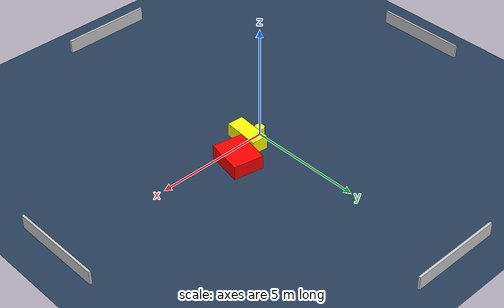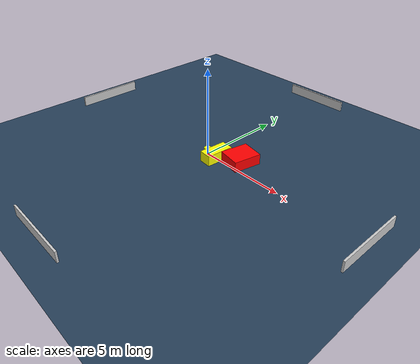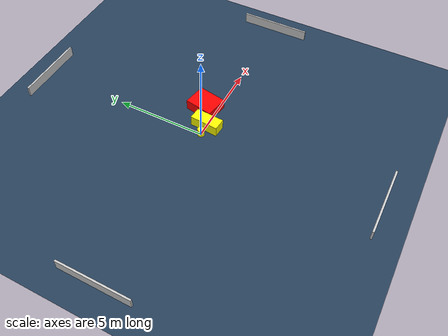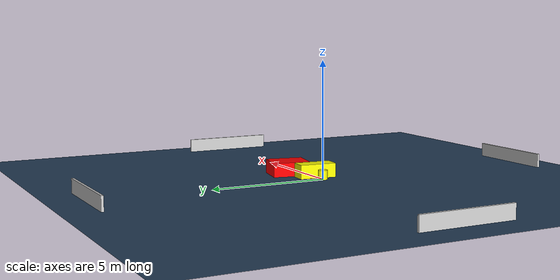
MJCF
<?xml version="1.0" ?>
<mujoco model="generated_environment">
  <option timestep="0.01" integrator="RK4" cone="elliptic"/>
  <default>
    <geom density="1"/>
  </default>
  <asset>
    <texture builtin="gradient" height="3072" name="skybox" rgb1="0.3 0.5 0.7" rgb2="0 0 0" type="skybox" width="512"/>
    <texture builtin="checker" height="300" name="groundplane" rgb1="0.2 0.3 0.4" rgb2="0.1 0.2 0.3" type="2d" width="300"/>
    <material name="groundplane" reflectance="0.2" texrepeat="5 5" texture="groundplane"/>
  </asset>
  <worldbody>
    <light dir="0 0 -1" directional="true" pos="0 0 1.5"/>
    <geom condim="3" friction="0.5 0.005 0.001" material="groundplane" name="floor" pos="0 0 0" size="0 0 0.05" type="plane"/>
    <body name="walls">
      <geom name="wall_1" condim="4" pos="-10.0 0.0 0.3" rgba="0.800000011920929 0.800000011920929 0.800000011920929 1.0" size="0.05 2.0 0.3" type="box"/>
      <geom name="wall_2" condim="4" pos="10.0 0.0 0.3" rgba="0.800000011920929 0.800000011920929 0.800000011920929 1.0" size="0.05 2.0 0.3" type="box"/>
      <geom name="wall_3" condim="4" pos="0.0 -10.0 0.3" rgba="0.800000011920929 0.800000011920929 0.800000011920929 1.0" size="2.0 0.05 0.3" type="box"/>
      <geom name="wall_4" condim="4" pos="0.0 10.0 0.3" rgba="0.800000011920929 0.800000011920929 0.800000011920929 1.0" size="2.0 0.05 0.3" type="box"/>
    </body>
    <body name="robot">
      <joint name="joint_x" type="slide" pos="0 0 0" axis="1 0 0"/>
      <joint name="joint_y" type="slide" pos="0 0 0" axis="0 1 0"/>
      <geom name="robot" type="cylinder" pos="0.0 0.0 0.2" size="0.2 0.2 0.0" mass="5.0" friction="1.0 0.005 0.0001" condim="4" rgba="1.0 1.0 0.0 1.0"/>
    </body>
    <body name="obstacle_1_movable">
      <geom name="obstacle_1_movable" condim="4" pos="0.6741852366826482 0.00032590900635758166 0.3" euler="0 0 355.47018937064314" friction="0.0 0.005 0.001" rgba="1.0 1.0 0.0 1.0" size="0.35558555336844033 0.7969798865886242 0.3" type="box" mass="0.1"/>
      <joint type="free"/>
    </body>
    <body name="obstacle_2_static">
      <geom name="obstacle_2_static" condim="4" pos="1.845207455285926 0.7026596929661476 0.3" euler="0 0 349.1892666240989" friction="0.0 0.005 0.001" rgba="1.0 0.0 0.0 1.0" size="0.6572985832888982 0.7988039778352676 0.3" type="box"/>
    </body>
  </worldbody>
  <actuator>
    <motor name="actuator_x" joint="joint_x" gear="1" ctrlrange="-1 1"/>
    <motor name="actuator_y" joint="joint_y" gear="1" ctrlrange="-1 1"/>
  </actuator>
</mujoco>
